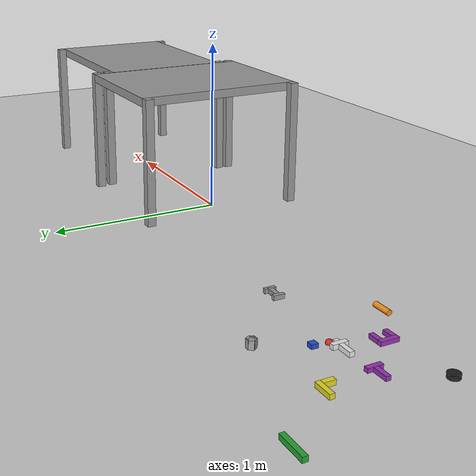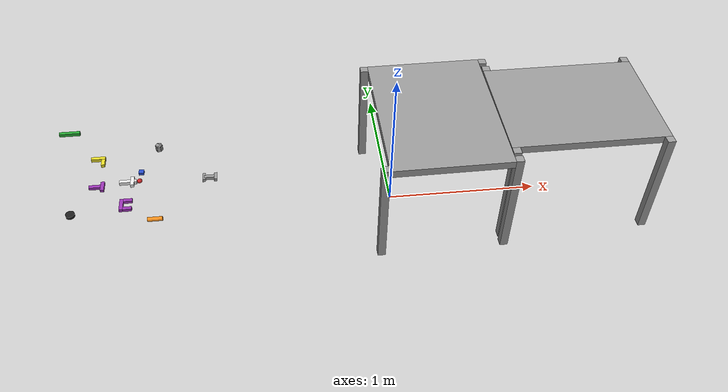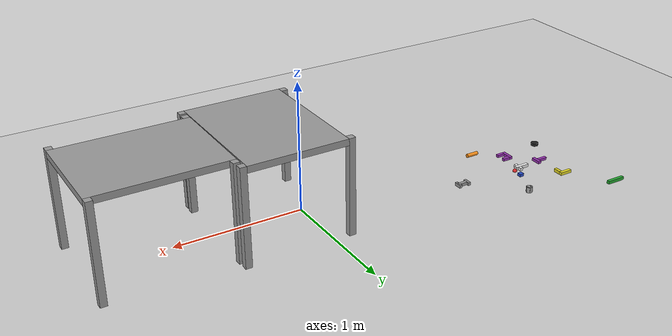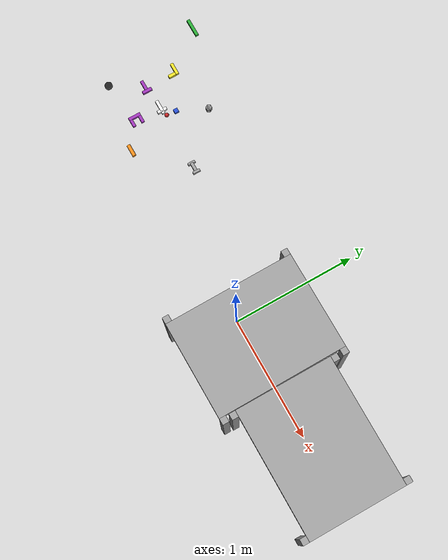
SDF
<sdf version="1.6">
 <world name="default">
  <light name="sun" type="directional">
   <pose>0 0 10 0 -0 0</pose>
   <diffuse>0.8 0.8 0.8 1</diffuse>
   <specular>0.2 0.2 0.2 1</specular>
   <attenuation>
    <range>1000</range>
    <constant>0.9</constant>
    <linear>0.01</linear>
    <quadratic>0.001</quadratic>
   </attenuation>
   <direction>-0.5 0.1 -0.9</direction>
  </light>
  <model name="ground_plane">
   <pose>0 1 0 0 -0 0</pose>
   <static>1</static>
   <link name="link">
    <collision name="collision">
     <geometry><plane><normal>0 0 1</normal><size>100 100</size></plane></geometry>
     <surface>
      <contact><collide_bitmask>65535</collide_bitmask></contact>
      <friction><ode><mu>100</mu><mu2>50</mu2></ode></friction>
     </surface>
    </collision>
    <visual name="visual">
     <cast_shadows>0</cast_shadows>
     <geometry><plane><normal>0 0 1</normal><size>100 100</size></plane></geometry>
     <material>
      <script><uri>file://media/materials/scripts/gazebo.material</uri><name>Gazebo/Grey</name></script>
     </material>
    </visual>
   </link>
  </model>
  <gravity>0 0 -9.8</gravity>
  <magnetic_field>6e-06 2.3e-05 -4.2e-05</magnetic_field>
  <atmosphere type="adiabatic"/>
  <physics name="default_physics" default="0" type="ode">
   <max_step_size>0.001</max_step_size>
   <real_time_factor>1</real_time_factor>
   <real_time_update_rate>1000</real_time_update_rate>
  </physics>
  <scene><ambient>0.4 0.4 0.4 1</ambient><background>0.7 0.7 0.7 1</background><shadows>1</shadows></scene>
  <audio><device>default</device></audio>
  <spherical_coordinates>
   <surface_model>EARTH_WGS84</surface_model>
   <latitude_deg>0</latitude_deg>
   <longitude_deg>0</longitude_deg>
   <elevation>0</elevation>
   <heading_deg>0</heading_deg>
  </spherical_coordinates>
  <model name="table">
   <link name="link_0">
    <inertial>
     <mass>1</mass>
     <inertia>
      <ixx>0.166667</ixx>
      <ixy>0</ixy>
      <ixz>0</ixz>
      <iyy>0.166667</iyy>
      <iyz>0</iyz>
      <izz>0.166667</izz>
     </inertia>
    </inertial>
    <visual name="visual">
     <geometry><box><size>0.75 1 0.05</size></box></geometry>
     <material>
      <lighting>1</lighting>
      <script><uri>file://media/materials/scripts/gazebo.material</uri><name>Gazebo/Grey</name></script>
      <shader type="vertex"><normal_map>__default__</normal_map></shader>
      <ambient>0.3 0.3 0.3 1</ambient>
      <diffuse>0.7 0.7 0.7 1</diffuse>
      <specular>0.01 0.01 0.01 1</specular>
      <emissive>0 0 0 1</emissive>
     </material>
    </visual>
    <collision name="collision">
     <geometry><box><size>0.75 1 0.05</size></box></geometry>
     <surface>
      <friction>
       <ode><mu>1</mu><mu2>1</mu2><fdir1>0 0 0</fdir1><slip1>0</slip1><slip2>0</slip2></ode>
       <torsional>
        <coefficient>1</coefficient>
        <patch_radius>0</patch_radius>
        <surface_radius>0</surface_radius>
        <use_patch_radius>1</use_patch_radius>
        <ode><slip>0</slip></ode>
       </torsional>
      </friction>
      <bounce><restitution_coefficient>0</restitution_coefficient><threshold>1e+06</threshold></bounce>
      <contact>
       <collide_without_contact>0</collide_without_contact>
       <collide_without_contact_bitmask>1</collide_without_contact_bitmask>
       <collide_bitmask>1</collide_bitmask>
       <ode>
        <soft_cfm>0</soft_cfm>
        <soft_erp>0.2</soft_erp>
        <kp>1e+13</kp>
        <kd>1</kd>
        <max_vel>0.01</max_vel>
        <min_depth>0</min_depth>
       </ode>
       <bullet>
        <split_impulse>1</split_impulse>
        <split_impulse_penetration_threshold>-0.01</split_impulse_penetration_threshold>
        <soft_cfm>0</soft_cfm>
        <soft_erp>0.2</soft_erp>
        <kp>1e+13</kp>
        <kd>1</kd>
       </bullet>
      </contact>
     </surface>
    </collision>
   </link>
   <link name="link_2_clone">
    <inertial>
     <mass>1</mass>
     <inertia>
      <ixx>0.166667</ixx>
      <ixy>0</ixy>
      <ixz>0</ixz>
      <iyy>0.166667</iyy>
      <iyz>0</iyz>
      <izz>0.166667</izz>
     </inertia>
    </inertial>
    <pose>-0.4 -0.475 -0.35 0 -0 0</pose>
    <visual name="visual">
     <geometry><box><size>0.05 0.05 0.75</size></box></geometry>
     <material>
      <lighting>1</lighting>
      <script><uri>file://media/materials/scripts/gazebo.material</uri><name>Gazebo/Grey</name></script>
      <shader type="vertex"><normal_map>__default__</normal_map></shader>
      <ambient>0.3 0.3 0.3 1</ambient>
      <diffuse>0.7 0.7 0.7 1</diffuse>
      <specular>0.01 0.01 0.01 1</specular>
      <emissive>0 0 0 1</emissive>
     </material>
    </visual>
    <collision name="collision">
     <geometry><box><size>0.05 0.05 0.75</size></box></geometry>
     <surface>
      <friction>
       <ode><mu>1</mu><mu2>1</mu2><fdir1>0 0 0</fdir1><slip1>0</slip1><slip2>0</slip2></ode>
       <torsional>
        <coefficient>1</coefficient>
        <patch_radius>0</patch_radius>
        <surface_radius>0</surface_radius>
        <use_patch_radius>1</use_patch_radius>
        <ode><slip>0</slip></ode>
       </torsional>
      </friction>
      <bounce><restitution_coefficient>0</restitution_coefficient><threshold>1e+06</threshold></bounce>
      <contact>
       <collide_without_contact>0</collide_without_contact>
       <collide_without_contact_bitmask>1</collide_without_contact_bitmask>
       <collide_bitmask>1</collide_bitmask>
       <ode>
        <soft_cfm>0</soft_cfm>
        <soft_erp>0.2</soft_erp>
        <kp>1e+13</kp>
        <kd>1</kd>
        <max_vel>0.01</max_vel>
        <min_depth>0</min_depth>
       </ode>
       <bullet>
        <split_impulse>1</split_impulse>
        <split_impulse_penetration_threshold>-0.01</split_impulse_penetration_threshold>
        <soft_cfm>0</soft_cfm>
        <soft_erp>0.2</soft_erp>
        <kp>1e+13</kp>
        <kd>1</kd>
       </bullet>
      </contact>
     </surface>
    </collision>
   </link>
   <link name="link_2_clone_0">
    <inertial>
     <mass>1</mass>
     <inertia>
      <ixx>0.166667</ixx>
      <ixy>0</ixy>
      <ixz>0</ixz>
      <iyy>0.166667</iyy>
      <iyz>0</iyz>
      <izz>0.166667</izz>
     </inertia>
    </inertial>
    <pose>0.4 -0.475 -0.35 0 -0 0</pose>
    <visual name="visual">
     <geometry><box><size>0.05 0.05 0.75</size></box></geometry>
     <material>
      <lighting>1</lighting>
      <script><uri>file://media/materials/scripts/gazebo.material</uri><name>Gazebo/Grey</name></script>
      <shader type="vertex"><normal_map>__default__</normal_map></shader>
      <ambient>0.3 0.3 0.3 1</ambient>
      <diffuse>0.7 0.7 0.7 1</diffuse>
      <specular>0.01 0.01 0.01 1</specular>
      <emissive>0 0 0 1</emissive>
     </material>
    </visual>
    <collision name="collision">
     <geometry><box><size>0.05 0.05 0.75</size></box></geometry>
     <surface>
      <friction>
       <ode><mu>1</mu><mu2>1</mu2><fdir1>0 0 0</fdir1><slip1>0</slip1><slip2>0</slip2></ode>
       <torsional>
        <coefficient>1</coefficient>
        <patch_radius>0</patch_radius>
        <surface_radius>0</surface_radius>
        <use_patch_radius>1</use_patch_radius>
        <ode><slip>0</slip></ode>
       </torsional>
      </friction>
      <bounce><restitution_coefficient>0</restitution_coefficient><threshold>1e+06</threshold></bounce>
      <contact>
       <collide_without_contact>0</collide_without_contact>
       <collide_without_contact_bitmask>1</collide_without_contact_bitmask>
       <collide_bitmask>1</collide_bitmask>
       <ode>
        <soft_cfm>0</soft_cfm>
        <soft_erp>0.2</soft_erp>
        <kp>1e+13</kp>
        <kd>1</kd>
        <max_vel>0.01</max_vel>
        <min_depth>0</min_depth>
       </ode>
       <bullet>
        <split_impulse>1</split_impulse>
        <split_impulse_penetration_threshold>-0.01</split_impulse_penetration_threshold>
        <soft_cfm>0</soft_cfm>
        <soft_erp>0.2</soft_erp>
        <kp>1e+13</kp>
        <kd>1</kd>
       </bullet>
      </contact>
     </surface>
    </collision>
   </link>
   <link name="link_2_clone_1">
    <inertial>
     <mass>1</mass>
     <inertia>
      <ixx>0.166667</ixx>
      <ixy>0</ixy>
      <ixz>0</ixz>
      <iyy>0.166667</iyy>
      <iyz>0</iyz>
      <izz>0.166667</izz>
     </inertia>
    </inertial>
    <pose>0.4 0.475 -0.35 0 -0 0</pose>
    <visual name="visual">
     <geometry><box><size>0.05 0.05 0.75</size></box></geometry>
     <material>
      <lighting>1</lighting>
      <script><uri>file://media/materials/scripts/gazebo.material</uri><name>Gazebo/Grey</name></script>
      <shader type="vertex"><normal_map>__default__</normal_map></shader>
      <ambient>0.3 0.3 0.3 1</ambient>
      <diffuse>0.7 0.7 0.7 1</diffuse>
      <specular>0.01 0.01 0.01 1</specular>
      <emissive>0 0 0 1</emissive>
     </material>
    </visual>
    <collision name="collision">
     <geometry><box><size>0.05 0.05 0.75</size></box></geometry>
     <surface>
      <friction>
       <ode><mu>1</mu><mu2>1</mu2><fdir1>0 0 0</fdir1><slip1>0</slip1><slip2>0</slip2></ode>
       <torsional>
        <coefficient>1</coefficient>
        <patch_radius>0</patch_radius>
        <surface_radius>0</surface_radius>
        <use_patch_radius>1</use_patch_radius>
        <ode><slip>0</slip></ode>
       </torsional>
      </friction>
      <bounce><restitution_coefficient>0</restitution_coefficient><threshold>1e+06</threshold></bounce>
      <contact>
       <collide_without_contact>0</collide_without_contact>
       <collide_without_contact_bitmask>1</collide_without_contact_bitmask>
       <collide_bitmask>1</collide_bitmask>
       <ode>
        <soft_cfm>0</soft_cfm>
        <soft_erp>0.2</soft_erp>
        <kp>1e+13</kp>
        <kd>1</kd>
        <max_vel>0.01</max_vel>
        <min_depth>0</min_depth>
       </ode>
       <bullet>
        <split_impulse>1</split_impulse>
        <split_impulse_penetration_threshold>-0.01</split_impulse_penetration_threshold>
        <soft_cfm>0</soft_cfm>
        <soft_erp>0.2</soft_erp>
        <kp>1e+13</kp>
        <kd>1</kd>
       </bullet>
      </contact>
     </surface>
    </collision>
   </link>
   <link name="link_2_clone_1_clone">
    <inertial>
     <mass>1</mass>
     <inertia>
      <ixx>0.166667</ixx>
      <ixy>0</ixy>
      <ixz>0</ixz>
      <iyy>0.166667</iyy>
      <iyz>0</iyz>
      <izz>0.166667</izz>
     </inertia>
    </inertial>
    <pose>-0.4 0.475 -0.35 0 -0 0</pose>
    <visual name="visual">
     <geometry><box><size>0.05 0.05 0.75</size></box></geometry>
     <material>
      <lighting>1</lighting>
      <script><uri>file://media/materials/scripts/gazebo.material</uri><name>Gazebo/Grey</name></script>
      <shader type="vertex"><normal_map>__default__</normal_map></shader>
      <ambient>0.3 0.3 0.3 1</ambient>
      <diffuse>0.7 0.7 0.7 1</diffuse>
      <specular>0.01 0.01 0.01 1</specular>
      <emissive>0 0 0 1</emissive>
     </material>
    </visual>
    <collision name="collision">
     <geometry><box><size>0.05 0.05 0.75</size></box></geometry>
     <surface>
      <friction>
       <ode><mu>1</mu><mu2>1</mu2><fdir1>0 0 0</fdir1><slip1>0</slip1><slip2>0</slip2></ode>
       <torsional>
        <coefficient>1</coefficient>
        <patch_radius>0</patch_radius>
        <surface_radius>0</surface_radius>
        <use_patch_radius>1</use_patch_radius>
        <ode><slip>0</slip></ode>
       </torsional>
      </friction>
      <bounce><restitution_coefficient>0</restitution_coefficient><threshold>1e+06</threshold></bounce>
      <contact>
       <collide_without_contact>0</collide_without_contact>
       <collide_without_contact_bitmask>1</collide_without_contact_bitmask>
       <collide_bitmask>1</collide_bitmask>
       <ode>
        <soft_cfm>0</soft_cfm>
        <soft_erp>0.2</soft_erp>
        <kp>1e+13</kp>
        <kd>1</kd>
        <max_vel>0.01</max_vel>
        <min_depth>0</min_depth>
       </ode>
       <bullet>
        <split_impulse>1</split_impulse>
        <split_impulse_penetration_threshold>-0.01</split_impulse_penetration_threshold>
        <soft_cfm>0</soft_cfm>
        <soft_erp>0.2</soft_erp>
        <kp>1e+13</kp>
        <kd>1</kd>
       </bullet>
      </contact>
     </surface>
    </collision>
   </link>
   <joint name="link_0_JOINT_2" type="fixed">
    <parent>link_0</parent>
    <child>link_2_clone</child>
    <physics>
     <ode><limit><cfm>0</cfm><erp>0.2</erp></limit><suspension><cfm>0</cfm><erp>0.2</erp></suspension></ode>
    </physics>
   </joint>
   <joint name="link_0_JOINT_3" type="fixed">
    <parent>link_0</parent>
    <child>link_2_clone_0</child>
    <physics>
     <ode><limit><cfm>0</cfm><erp>0.2</erp></limit><suspension><cfm>0</cfm><erp>0.2</erp></suspension></ode>
    </physics>
   </joint>
   <joint name="link_0_JOINT_4" type="fixed">
    <parent>link_0</parent>
    <child>link_2_clone_1</child>
    <physics>
     <ode><limit><cfm>0</cfm><erp>0.2</erp></limit><suspension><cfm>0</cfm><erp>0.2</erp></suspension></ode>
    </physics>
   </joint>
   <joint name="link_0_JOINT_6" type="fixed">
    <parent>link_0</parent>
    <child>link_2_clone_1_clone</child>
    <physics>
     <ode><limit><cfm>0</cfm><erp>0.2</erp></limit><suspension><cfm>0</cfm><erp>0.2</erp></suspension></ode>
    </physics>
   </joint>
   <static>1</static>
   <pose>0.268534 0.000932 0.724998 0 2e-06 0.005571</pose>
  </model>
  <model name="table_0">
   <link name="link_0">
    <inertial>
     <mass>1</mass>
     <inertia>
      <ixx>0.166667</ixx>
      <ixy>0</ixy>
      <ixz>0</ixz>
      <iyy>0.166667</iyy>
      <iyz>0</iyz>
      <izz>0.166667</izz>
     </inertia>
    </inertial>
    <visual name="visual">
     <geometry><box><size>0.75 1 0.05</size></box></geometry>
     <material>
      <lighting>1</lighting>
      <script><uri>file://media/materials/scripts/gazebo.material</uri><name>Gazebo/Grey</name></script>
      <shader type="vertex"><normal_map>__default__</normal_map></shader>
      <ambient>0.3 0.3 0.3 1</ambient>
      <diffuse>0.7 0.7 0.7 1</diffuse>
      <specular>0.01 0.01 0.01 1</specular>
      <emissive>0 0 0 1</emissive>
     </material>
    </visual>
    <collision name="collision">
     <geometry><box><size>0.75 1 0.05</size></box></geometry>
     <surface>
      <friction>
       <ode><mu>1</mu><mu2>1</mu2><fdir1>0 0 0</fdir1><slip1>0</slip1><slip2>0</slip2></ode>
       <torsional>
        <coefficient>1</coefficient>
        <patch_radius>0</patch_radius>
        <surface_radius>0</surface_radius>
        <use_patch_radius>1</use_patch_radius>
        <ode><slip>0</slip></ode>
       </torsional>
      </friction>
      <bounce><restitution_coefficient>0</restitution_coefficient><threshold>1e+06</threshold></bounce>
      <contact>
       <collide_without_contact>0</collide_without_contact>
       <collide_without_contact_bitmask>1</collide_without_contact_bitmask>
       <collide_bitmask>1</collide_bitmask>
       <ode>
        <soft_cfm>0</soft_cfm>
        <soft_erp>0.2</soft_erp>
        <kp>1e+13</kp>
        <kd>1</kd>
        <max_vel>0.01</max_vel>
        <min_depth>0</min_depth>
       </ode>
       <bullet>
        <split_impulse>1</split_impulse>
        <split_impulse_penetration_threshold>-0.01</split_impulse_penetration_threshold>
        <soft_cfm>0</soft_cfm>
        <soft_erp>0.2</soft_erp>
        <kp>1e+13</kp>
        <kd>1</kd>
       </bullet>
      </contact>
     </surface>
    </collision>
   </link>
   <link name="link_2_clone">
    <inertial>
     <mass>1</mass>
     <inertia>
      <ixx>0.166667</ixx>
      <ixy>0</ixy>
      <ixz>0</ixz>
      <iyy>0.166667</iyy>
      <iyz>0</iyz>
      <izz>0.166667</izz>
     </inertia>
    </inertial>
    <pose>-0.4 -0.475 -0.35 0 -0 0</pose>
    <visual name="visual">
     <geometry><box><size>0.05 0.05 0.75</size></box></geometry>
     <material>
      <lighting>1</lighting>
      <script><uri>file://media/materials/scripts/gazebo.material</uri><name>Gazebo/Grey</name></script>
      <shader type="vertex"><normal_map>__default__</normal_map></shader>
      <ambient>0.3 0.3 0.3 1</ambient>
      <diffuse>0.7 0.7 0.7 1</diffuse>
      <specular>0.01 0.01 0.01 1</specular>
      <emissive>0 0 0 1</emissive>
     </material>
    </visual>
    <collision name="collision">
     <geometry><box><size>0.05 0.05 0.75</size></box></geometry>
     <surface>
      <friction>
       <ode><mu>1</mu><mu2>1</mu2><fdir1>0 0 0</fdir1><slip1>0</slip1><slip2>0</slip2></ode>
       <torsional>
        <coefficient>1</coefficient>
        <patch_radius>0</patch_radius>
        <surface_radius>0</surface_radius>
        <use_patch_radius>1</use_patch_radius>
        <ode><slip>0</slip></ode>
       </torsional>
      </friction>
      <bounce><restitution_coefficient>0</restitution_coefficient><threshold>1e+06</threshold></bounce>
      <contact>
       <collide_without_contact>0</collide_without_contact>
       <collide_without_contact_bitmask>1</collide_without_contact_bitmask>
       <collide_bitmask>1</collide_bitmask>
       <ode>
        <soft_cfm>0</soft_cfm>
        <soft_erp>0.2</soft_erp>
        <kp>1e+13</kp>
        <kd>1</kd>
        <max_vel>0.01</max_vel>
        <min_depth>0</min_depth>
       </ode>
       <bullet>
        <split_impulse>1</split_impulse>
        <split_impulse_penetration_threshold>-0.01</split_impulse_penetration_threshold>
        <soft_cfm>0</soft_cfm>
        <soft_erp>0.2</soft_erp>
        <kp>1e+13</kp>
        <kd>1</kd>
       </bullet>
      </contact>
     </surface>
    </collision>
   </link>
   <link name="link_2_clone_0">
    <inertial>
     <mass>1</mass>
     <inertia>
      <ixx>0.166667</ixx>
      <ixy>0</ixy>
      <ixz>0</ixz>
      <iyy>0.166667</iyy>
      <iyz>0</iyz>
      <izz>0.166667</izz>
     </inertia>
    </inertial>
    <pose>0.4 -0.475 -0.35 0 -0 0</pose>
    <visual name="visual">
     <geometry><box><size>0.05 0.05 0.75</size></box></geometry>
     <material>
      <lighting>1</lighting>
      <script><uri>file://media/materials/scripts/gazebo.material</uri><name>Gazebo/Grey</name></script>
      <shader type="vertex"><normal_map>__default__</normal_map></shader>
      <ambient>0.3 0.3 0.3 1</ambient>
      <diffuse>0.7 0.7 0.7 1</diffuse>
      <specular>0.01 0.01 0.01 1</specular>
      <emissive>0 0 0 1</emissive>
     </material>
    </visual>
    <collision name="collision">
     <geometry><box><size>0.05 0.05 0.75</size></box></geometry>
     <surface>
      <friction>
       <ode><mu>1</mu><mu2>1</mu2><fdir1>0 0 0</fdir1><slip1>0</slip1><slip2>0</slip2></ode>
       <torsional>
        <coefficient>1</coefficient>
        <patch_radius>0</patch_radius>
        <surface_radius>0</surface_radius>
        <use_patch_radius>1</use_patch_radius>
        <ode><slip>0</slip></ode>
       </torsional>
      </friction>
      <bounce><restitution_coefficient>0</restitution_coefficient><threshold>1e+06</threshold></bounce>
      <contact>
       <collide_without_contact>0</collide_without_contact>
       <collide_without_contact_bitmask>1</collide_without_contact_bitmask>
       <collide_bitmask>1</collide_bitmask>
       <ode>
        <soft_cfm>0</soft_cfm>
        <soft_erp>0.2</soft_erp>
        <kp>1e+13</kp>
        <kd>1</kd>
        <max_vel>0.01</max_vel>
        <min_depth>0</min_depth>
       </ode>
       <bullet>
        <split_impulse>1</split_impulse>
        <split_impulse_penetration_threshold>-0.01</split_impulse_penetration_threshold>
        <soft_cfm>0</soft_cfm>
        <soft_erp>0.2</soft_erp>
        <kp>1e+13</kp>
        <kd>1</kd>
       </bullet>
      </contact>
     </surface>
    </collision>
   </link>
   <link name="link_2_clone_1">
    <inertial>
     <mass>1</mass>
     <inertia>
      <ixx>0.166667</ixx>
      <ixy>0</ixy>
      <ixz>0</ixz>
      <iyy>0.166667</iyy>
      <iyz>0</iyz>
      <izz>0.166667</izz>
     </inertia>
    </inertial>
    <pose>0.4 0.475 -0.35 0 -0 0</pose>
    <visual name="visual">
     <geometry><box><size>0.05 0.05 0.75</size></box></geometry>
     <material>
      <lighting>1</lighting>
      <script><uri>file://media/materials/scripts/gazebo.material</uri><name>Gazebo/Grey</name></script>
      <shader type="vertex"><normal_map>__default__</normal_map></shader>
      <ambient>0.3 0.3 0.3 1</ambient>
      <diffuse>0.7 0.7 0.7 1</diffuse>
      <specular>0.01 0.01 0.01 1</specular>
      <emissive>0 0 0 1</emissive>
     </material>
    </visual>
    <collision name="collision">
     <geometry><box><size>0.05 0.05 0.75</size></box></geometry>
     <surface>
      <friction>
       <ode><mu>1</mu><mu2>1</mu2><fdir1>0 0 0</fdir1><slip1>0</slip1><slip2>0</slip2></ode>
       <torsional>
        <coefficient>1</coefficient>
        <patch_radius>0</patch_radius>
        <surface_radius>0</surface_radius>
        <use_patch_radius>1</use_patch_radius>
        <ode><slip>0</slip></ode>
       </torsional>
      </friction>
      <bounce><restitution_coefficient>0</restitution_coefficient><threshold>1e+06</threshold></bounce>
      <contact>
       <collide_without_contact>0</collide_without_contact>
       <collide_without_contact_bitmask>1</collide_without_contact_bitmask>
       <collide_bitmask>1</collide_bitmask>
       <ode>
        <soft_cfm>0</soft_cfm>
        <soft_erp>0.2</soft_erp>
        <kp>1e+13</kp>
        <kd>1</kd>
        <max_vel>0.01</max_vel>
        <min_depth>0</min_depth>
       </ode>
       <bullet>
        <split_impulse>1</split_impulse>
        <split_impulse_penetration_threshold>-0.01</split_impulse_penetration_threshold>
        <soft_cfm>0</soft_cfm>
        <soft_erp>0.2</soft_erp>
        <kp>1e+13</kp>
        <kd>1</kd>
       </bullet>
      </contact>
     </surface>
    </collision>
   </link>
   <link name="link_2_clone_1_clone">
    <inertial>
     <mass>1</mass>
     <inertia>
      <ixx>0.166667</ixx>
      <ixy>0</ixy>
      <ixz>0</ixz>
      <iyy>0.166667</iyy>
      <iyz>0</iyz>
      <izz>0.166667</izz>
     </inertia>
    </inertial>
    <pose>-0.4 0.475 -0.35 0 -0 0</pose>
    <visual name="visual">
     <geometry><box><size>0.05 0.05 0.75</size></box></geometry>
     <material>
      <lighting>1</lighting>
      <script><uri>file://media/materials/scripts/gazebo.material</uri><name>Gazebo/Grey</name></script>
      <shader type="vertex"><normal_map>__default__</normal_map></shader>
      <ambient>0.3 0.3 0.3 1</ambient>
      <diffuse>0.7 0.7 0.7 1</diffuse>
      <specular>0.01 0.01 0.01 1</specular>
      <emissive>0 0 0 1</emissive>
     </material>
    </visual>
    <collision name="collision">
     <geometry><box><size>0.05 0.05 0.75</size></box></geometry>
     <surface>
      <friction>
       <ode><mu>1</mu><mu2>1</mu2><fdir1>0 0 0</fdir1><slip1>0</slip1><slip2>0</slip2></ode>
       <torsional>
        <coefficient>1</coefficient>
        <patch_radius>0</patch_radius>
        <surface_radius>0</surface_radius>
        <use_patch_radius>1</use_patch_radius>
        <ode><slip>0</slip></ode>
       </torsional>
      </friction>
      <bounce><restitution_coefficient>0</restitution_coefficient><threshold>1e+06</threshold></bounce>
      <contact>
       <collide_without_contact>0</collide_without_contact>
       <collide_without_contact_bitmask>1</collide_without_contact_bitmask>
       <collide_bitmask>1</collide_bitmask>
       <ode>
        <soft_cfm>0</soft_cfm>
        <soft_erp>0.2</soft_erp>
        <kp>1e+13</kp>
        <kd>1</kd>
        <max_vel>0.01</max_vel>
        <min_depth>0</min_depth>
       </ode>
       <bullet>
        <split_impulse>1</split_impulse>
        <split_impulse_penetration_threshold>-0.01</split_impulse_penetration_threshold>
        <soft_cfm>0</soft_cfm>
        <soft_erp>0.2</soft_erp>
        <kp>1e+13</kp>
        <kd>1</kd>
       </bullet>
      </contact>
     </surface>
    </collision>
   </link>
   <joint name="link_0_JOINT_2" type="fixed">
    <parent>link_0</parent>
    <child>link_2_clone</child>
    <physics>
     <ode><limit><cfm>0</cfm><erp>0.2</erp></limit><suspension><cfm>0</cfm><erp>0.2</erp></suspension></ode>
    </physics>
   </joint>
   <joint name="link_0_JOINT_3" type="fixed">
    <parent>link_0</parent>
    <child>link_2_clone_0</child>
    <physics>
     <ode><limit><cfm>0</cfm><erp>0.2</erp></limit><suspension><cfm>0</cfm><erp>0.2</erp></suspension></ode>
    </physics>
   </joint>
   <joint name="link_0_JOINT_4" type="fixed">
    <parent>link_0</parent>
    <child>link_2_clone_1</child>
    <physics>
     <ode><limit><cfm>0</cfm><erp>0.2</erp></limit><suspension><cfm>0</cfm><erp>0.2</erp></suspension></ode>
    </physics>
   </joint>
   <joint name="link_0_JOINT_6" type="fixed">
    <parent>link_0</parent>
    <child>link_2_clone_1_clone</child>
    <physics>
     <ode><limit><cfm>0</cfm><erp>0.2</erp></limit><suspension><cfm>0</cfm><erp>0.2</erp></suspension></ode>
    </physics>
   </joint>
   <static>1</static>
   <pose>1.14971 -1e-06 0.724999 0 -0 1.5708</pose>
  </model>
  <model name="I_shape">
   <link name="link">
    <inertial>
     <mass>0.15</mass>
     <inertia><ixx>0.0002</ixx><ixy>0</ixy><ixz>0</ixz><iyy>0.0002</iyy><iyz>0</iyz><izz>0.0004</izz></inertia>
    </inertial>
    <visual name="web_vis">
     <geometry><box><size>0.08 0.025 0.025</size></box></geometry>
     <material><script><name>Gazebo/Grey</name><uri>__default__</uri></script></material>
    </visual>
    <collision name="web_col">
     <geometry><box><size>0.08 0.025 0.025</size></box></geometry>
     <surface><friction><ode><mu>100</mu><mu2>100</mu2></ode></friction></surface>
    </collision>
    <visual name="left_vis">
     <pose>-0.04 0 0 0 -0 0</pose>
     <geometry><box><size>0.02 0.06 0.025</size></box></geometry>
     <material><script><name>Gazebo/Grey</name><uri>__default__</uri></script></material>
    </visual>
    <collision name="left_col">
     <pose>-0.04 0 0 0 -0 0</pose>
     <geometry><box><size>0.02 0.06 0.025</size></box></geometry>
     <surface><friction><ode><mu>100</mu><mu2>100</mu2></ode></friction></surface>
    </collision>
    <visual name="right_vis">
     <pose>0.04 0 0 0 -0 0</pose>
     <geometry><box><size>0.02 0.06 0.025</size></box></geometry>
     <material><script><name>Gazebo/Grey</name><uri>__default__</uri></script></material>
    </visual>
    <collision name="right_col">
     <pose>0.04 0 0 0 -0 0</pose>
     <geometry><box><size>0.02 0.06 0.025</size></box></geometry>
     <surface><friction><ode><mu>100</mu><mu2>100</mu2></ode></friction></surface>
    </collision>
   </link>
   <pose>-1.22844 0.311081 0.0125 0 0 -8e-06</pose>
  </model>
  <model name="L_shape">
   <link name="link">
    <inertial>
     <mass>0.15</mass>
     <inertia><ixx>0.0002</ixx><ixy>0</ixy><ixz>0</ixz><iyy>0.0002</iyy><iyz>0</iyz><izz>0.0004</izz></inertia>
    </inertial>
    <visual name="long_vis">
     <pose>0 0.03 0 0 -0 0</pose>
     <geometry><box><size>0.1 0.025 0.025</size></box></geometry>
     <material><script><name>Gazebo/Yellow</name><uri>__default__</uri></script></material>
    </visual>
    <collision name="long_col">
     <pose>0 0.03 0 0 -0 0</pose>
     <geometry><box><size>0.1 0.025 0.025</size></box></geometry>
     <surface><friction><ode><mu>100</mu><mu2>100</mu2></ode></friction></surface>
    </collision>
    <visual name="short_vis">
     <pose>0.0375 -0.0125 0 0 -0 0</pose>
     <geometry><box><size>0.025 0.06 0.025</size></box></geometry>
     <material><script><name>Gazebo/Yellow</name><uri>__default__</uri></script></material>
    </visual>
    <collision name="short_col">
     <pose>0.0375 -0.0125 0 0 -0 0</pose>
     <geometry><box><size>0.025 0.06 0.025</size></box></geometry>
     <surface><friction><ode><mu>100</mu><mu2>100</mu2></ode></friction></surface>
    </collision>
   </link>
   <pose>-2.02356 0.544341 0.0125 0 -0 2e-06</pose>
  </model>
  <model name="bar">
   <link name="link">
    <inertial>
     <mass>0.1</mass>
     <inertia><ixx>1e-05</ixx><ixy>0</ixy><ixz>0</ixz><iyy>0.0002</iyy><iyz>0</iyz><izz>0.0002</izz></inertia>
    </inertial>
    <visual name="visual">
     <geometry><box><size>0.15 0.025 0.025</size></box></geometry>
     <material><script><name>Gazebo/Green</name><uri>__default__</uri></script></material>
    </visual>
    <collision name="collision">
     <geometry><box><size>0.15 0.025 0.025</size></box></geometry>
     <surface>
      <friction><ode><mu>100</mu><mu2>100</mu2></ode></friction>
      <contact><ode><kp>100000</kp><kd>1</kd><min_depth>0.001</min_depth></ode></contact>
     </surface>
    </collision>
   </link>
   <pose>-2.26375 0.872292 0.011498 0 -0 0</pose>
  </model>
  <model name="cross">
   <link name="link">
    <inertial>
     <mass>0.15</mass>
     <inertia><ixx>0.0002</ixx><ixy>0</ixy><ixz>0</ixz><iyy>0.0002</iyy><iyz>0</iyz><izz>0.0004</izz></inertia>
    </inertial>
    <visual name="stem_vis">
     <geometry><box><size>0.12 0.025 0.025</size></box></geometry>
     <material><script><name>Gazebo/White</name><uri>__default__</uri></script></material>
    </visual>
    <collision name="stem_col">
     <geometry><box><size>0.12 0.025 0.025</size></box></geometry>
     <surface>
      <friction><ode><mu>100</mu><mu2>100</mu2></ode></friction>
      <contact><ode><kp>100000</kp><kd>1</kd><min_depth>0.001</min_depth></ode></contact>
     </surface>
    </collision>
    <visual name="crossbar_vis">
     <pose>0.03 0 0 0 -0 0</pose>
     <geometry><box><size>0.025 0.08 0.025</size></box></geometry>
     <material><script><name>Gazebo/White</name><uri>__default__</uri></script></material>
    </visual>
    <collision name="crossbar_col">
     <pose>0.03 0 0 0 -0 0</pose>
     <geometry><box><size>0.025 0.08 0.025</size></box></geometry>
     <surface>
      <friction><ode><mu>100</mu><mu2>100</mu2></ode></friction>
      <contact><ode><kp>100000</kp><kd>1</kd><min_depth>0.001</min_depth></ode></contact>
     </surface>
    </collision>
   </link>
   <pose>-1.79548 0.320284 0.011498 0 -1.3e-05 1e-06</pose>
  </model>
  <model name="cylinder">
   <link name="link">
    <inertial>
     <mass>0.1</mass>
     <inertia><ixx>1e-05</ixx><ixy>0</ixy><ixz>0</ixz><iyy>0.0001</iyy><iyz>0</iyz><izz>0.0001</izz></inertia>
    </inertial>
    <visual name="visual">
     <pose>0 0 0 0 1.5707 0</pose>
     <geometry><cylinder><radius>0.015</radius><length>0.1</length></cylinder></geometry>
     <material><script><name>Gazebo/Orange</name><uri>__default__</uri></script></material>
    </visual>
    <collision name="collision">
     <pose>0 0 0 0 1.5707 0</pose>
     <geometry><cylinder><radius>0.015</radius><length>0.1</length></cylinder></geometry>
     <surface>
      <friction><ode><mu>100</mu><mu2>100</mu2></ode></friction>
      <contact><ode><kp>100000</kp><kd>1</kd><min_depth>0.001</min_depth></ode></contact>
     </surface>
    </collision>
   </link>
   <pose>-1.58978 -0.047934 0.013995 0 9.6e-05 0</pose>
  </model>
  <model name="sphere">
   <link name="link">
    <inertial>
     <mass>0.2</mass>
     <inertia><ixx>2.5e-05</ixx><ixy>0</ixy><ixz>0</ixz><iyy>2.5e-05</iyy><iyz>0</iyz><izz>2.5e-05</izz></inertia>
    </inertial>
    <visual name="visual">
     <geometry><sphere><radius>0.0175</radius></sphere></geometry>
     <material><script><name>Gazebo/Red</name><uri>__default__</uri></script></material>
    </visual>
    <collision name="collision">
     <geometry><sphere><radius>0.0175</radius></sphere></geometry>
     <surface>
      <friction><ode><mu>100</mu><mu2>100</mu2></ode></friction>
      <contact><ode><kp>100000</kp><kd>1</kd><min_depth>0.001</min_depth></ode></contact>
     </surface>
    </collision>
   </link>
   <pose>-1.71813 0.336602 0 0 -0 0</pose>
  </model>
  <model name="cube">
   <link name="link">
    <inertial>
     <mass>0.2</mass>
     <inertia><ixx>0.0002</ixx><ixy>0</ixy><ixz>0</ixz><iyy>0.0002</iyy><iyz>0</iyz><izz>0.0002</izz></inertia>
    </inertial>
    <visual name="visual">
     <geometry><box><size>0.035 0.035 0.035</size></box></geometry>
     <material><script><name>Gazebo/Blue</name><uri>__default__</uri></script></material>
    </visual>
    <collision name="collision">
     <geometry><box><size>0.035 0.035 0.035</size></box></geometry>
     <surface>
      <friction><ode><mu>100</mu><mu2>100</mu2></ode></friction>
      <contact><ode><kp>100000</kp><kd>1</kd><min_depth>0.001</min_depth></ode></contact>
     </surface>
    </collision>
   </link>
   <pose>-1.70977 0.415189 0 0 -0 0</pose>
  </model>
  <model name="T_shape">
   <link name="link">
    <inertial>
     <mass>0.2</mass>
     <inertia><ixx>0.0003</ixx><ixy>0</ixy><ixz>0</ixz><iyy>0.0003</iyy><iyz>0</iyz><izz>0.0006</izz></inertia>
    </inertial>
    <visual name="stem_vis">
     <pose>-0.02 0 0 0 -0 0</pose>
     <geometry><box><size>0.08 0.025 0.035</size></box></geometry>
     <material><script><name>Gazebo/Purple</name><uri>__default__</uri></script></material>
    </visual>
    <collision name="stem_col">
     <pose>-0.02 0 0 0 -0 0</pose>
     <geometry><box><size>0.08 0.025 0.035</size></box></geometry>
     <surface><friction><ode><mu>100</mu><mu2>100</mu2></ode></friction></surface>
    </collision>
    <visual name="top_vis">
     <pose>0.0325 0 0 0 -0 0</pose>
     <geometry><box><size>0.025 0.08 0.035</size></box></geometry>
     <material><script><name>Gazebo/Purple</name><uri>__default__</uri></script></material>
    </visual>
    <collision name="top_col">
     <pose>0.0325 0 0 0 -0 0</pose>
     <geometry><box><size>0.025 0.08 0.035</size></box></geometry>
     <surface><friction><ode><mu>100</mu><mu2>100</mu2></ode></friction></surface>
    </collision>
   </link>
   <pose>-2.00319 0.297704 0 0 -0 0</pose>
  </model>
  <model name="bolt">
   <link name="link">
    <inertial>
     <mass>0.1</mass>
     <inertia><ixx>0.0001</ixx><ixy>0</ixy><ixz>0</ixz><iyy>0.0001</iyy><iyz>0</iyz><izz>0.0002</izz></inertia>
    </inertial>
    <visual name="box1_vis">
     <geometry><box><size>0.025 0.045 0.08</size></box></geometry>
     <material><script><name>Gazebo/Grey</name><uri>__default__</uri></script></material>
    </visual>
    <collision name="box1_col">
     <geometry><box><size>0.025 0.045 0.08</size></box></geometry>
     <surface><friction><ode><mu>100</mu><mu2>100</mu2></ode></friction></surface>
    </collision>
    <visual name="box2_vis">
     <pose>0 0 0 0 -0 1.047</pose>
     <geometry><box><size>0.025 0.045 0.08</size></box></geometry>
     <material><script><name>Gazebo/Grey</name><uri>__default__</uri></script></material>
    </visual>
    <collision name="box2_col">
     <pose>0 0 0 0 -0 1.047</pose>
     <geometry><box><size>0.025 0.045 0.08</size></box></geometry>
     <surface><friction><ode><mu>100</mu><mu2>100</mu2></ode></friction></surface>
    </collision>
    <visual name="box3_vis">
     <pose>0 0 0 0 -0 2.094</pose>
     <geometry><box><size>0.025 0.045 0.08</size></box></geometry>
     <material><script><name>Gazebo/Grey</name><uri>__default__</uri></script></material>
    </visual>
    <collision name="box3_col">
     <pose>0 0 0 0 -0 2.094</pose>
     <geometry><box><size>0.025 0.045 0.08</size></box></geometry>
     <surface><friction><ode><mu>100</mu><mu2>100</mu2></ode></friction></surface>
    </collision>
   </link>
   <pose>-1.59655 0.649766 0 0 -0 0</pose>
  </model>
  <model name="puck">
   <link name="link">
    <inertial>
     <mass>0.2</mass>
     <inertia><ixx>0.0001</ixx><ixy>0</ixy><ixz>0</ixz><iyy>0.0001</iyy><iyz>0</iyz><izz>0.0001</izz></inertia>
    </inertial>
    <visual name="visual">
     <geometry><cylinder><radius>0.03</radius><length>0.035</length></cylinder></geometry>
     <material><script><name>Gazebo/Black</name><uri>__default__</uri></script></material>
    </visual>
    <collision name="collision">
     <geometry><cylinder><radius>0.03</radius><length>0.035</length></cylinder></geometry>
     <surface>
      <friction><ode><mu>100</mu><mu2>100</mu2></ode></friction>
      <contact><ode><kp>100000</kp><kd>1</kd><min_depth>0.001</min_depth></ode></contact>
     </surface>
    </collision>
   </link>
   <pose>-2.15999 0.051382 0 0 -0 0</pose>
  </model>
  <model name="C_shape">
   <link name="link">
    <inertial>
     <mass>0.2</mass>
     <inertia><ixx>0.0003</ixx><ixy>0</ixy><ixz>0</ixz><iyy>0.0003</iyy><iyz>0</iyz><izz>0.0006</izz></inertia>
    </inertial>
    <visual name="spine_vis">
     <pose>-0.02 0 0 0 -0 0</pose>
     <geometry><box><size>0.025 0.1 0.035</size></box></geometry>
     <material><script><name>Gazebo/Purple</name><uri>__default__</uri></script></material>
    </visual>
    <collision name="spine_col">
     <pose>-0.02 0 0 0 -0 0</pose>
     <geometry><box><size>0.025 0.1 0.035</size></box></geometry>
     <surface>
      <friction><ode><mu>100</mu><mu2>100</mu2></ode></friction>
      <contact><ode><kp>100000</kp><kd>1</kd><min_depth>0.001</min_depth></ode></contact>
     </surface>
    </collision>
    <visual name="top_vis">
     <pose>0.0225 0.0375 0 0 -0 0</pose>
     <geometry><box><size>0.06 0.025 0.035</size></box></geometry>
     <material><script><name>Gazebo/Purple</name><uri>__default__</uri></script></material>
    </visual>
    <collision name="top_col">
     <pose>0.0225 0.0375 0 0 -0 0</pose>
     <geometry><box><size>0.06 0.025 0.035</size></box></geometry>
     <surface>
      <friction><ode><mu>100</mu><mu2>100</mu2></ode></friction>
      <contact><ode><kp>100000</kp><kd>1</kd><min_depth>0.001</min_depth></ode></contact>
     </surface>
    </collision>
    <visual name="bot_vis">
     <pose>0.0225 -0.0375 0 0 -0 0</pose>
     <geometry><box><size>0.06 0.025 0.035</size></box></geometry>
     <material><script><name>Gazebo/Purple</name><uri>__default__</uri></script></material>
    </visual>
    <collision name="bot_col">
     <pose>0.0225 -0.0375 0 0 -0 0</pose>
     <geometry><box><size>0.06 0.025 0.035</size></box></geometry>
     <surface>
      <friction><ode><mu>100</mu><mu2>100</mu2></ode></friction>
      <contact><ode><kp>100000</kp><kd>1</kd><min_depth>0.001</min_depth></ode></contact>
     </surface>
    </collision>
   </link>
   <pose>-1.80676 0.106913 0 0 -0 0</pose>
  </model>
 </world>
</sdf>
